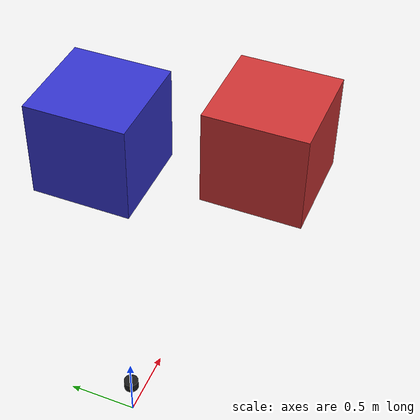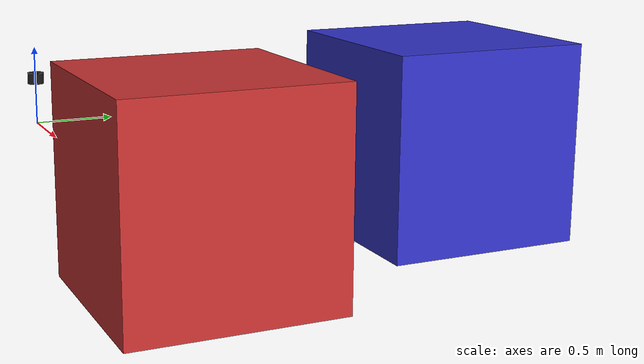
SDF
<?xml version="1.0" ?>
<sdf version="1.9">
  <world name="radarays_dynamic_cpu_multi">
    <plugin
      filename="gz-sim-physics-system"
      name="gz::sim::systems::Physics" />
    <plugin
      filename="gz-sim-user-commands-system"
      name="gz::sim::systems::UserCommands" />
    <plugin
      filename="gz-sim-scene-broadcaster-system"
      name="gz::sim::systems::SceneBroadcaster" />

    <plugin name="rmagine_embree_map_system" filename="librmagine_embree_map_system.so">
      <ignore_model>sensor_model</ignore_model>
      <update>
        <rate_limit>30</rate_limit>
        <delta_trans>0.001</delta_trans>
        <delta_rot>0.001</delta_rot>
        <delta_scale>0.001</delta_scale>
      </update>
    </plugin>

    <plugin name="rmagine_embree_sensor_system" filename="librmagine_embree_sensor_system.so"/>

    <light name="sun" type="directional">
      <cast_shadows>true</cast_shadows>
      <pose>0 0 10 0 0 0</pose>
      <diffuse>0.8 0.8 0.8 1</diffuse>
      <specular>0.2 0.2 0.2 1</specular>
      <direction>-0.4 0.2 -0.9</direction>
    </light>

    <model name="target_box_translate">
      <static>false</static>
      <pose>3 0 0.3 0 0 0</pose>
      <plugin name="test_box_mover_system" filename="libtest_box_mover_system.so">
        <axis>1 0 0</axis>
        <amplitude>1.0</amplitude>
        <period>6.0</period>
      </plugin>
      <link name="link">
        <gravity>false</gravity>
        <velocity_decay>
          <linear>1.0</linear>
          <angular>1.0</angular>
        </velocity_decay>
        <visual name="visual">
          <geometry>
            <box>
              <size>1 1 1</size>
            </box>
          </geometry>
          <material>
            <ambient>0.8 0.2 0.2 1</ambient>
            <diffuse>0.8 0.2 0.2 1</diffuse>
          </material>
          <radarays_material>
            <velocity>0.0</velocity>
            <ambient>0.3</ambient>
            <diffuse>0.7</diffuse>
            <specular>50.0</specular>
          </radarays_material>
        </visual>
      </link>
    </model>

    <model name="target_box_rotate">
      <static>false</static>
      <pose>2.5 1.5 0.3 0 0 0</pose>
      <plugin name="test_box_mover_system" filename="libtest_box_mover_system.so">
        <axis>1 0 0</axis>
        <amplitude>0.0</amplitude>
        <angular_axis>0 0 1</angular_axis>
        <angular_amplitude>0.6</angular_amplitude>
        <period>6.0</period>
      </plugin>
      <link name="link">
        <gravity>false</gravity>
        <velocity_decay>
          <linear>1.0</linear>
          <angular>1.0</angular>
        </velocity_decay>
        <visual name="visual">
          <geometry>
            <box>
              <size>1 1 1</size>
            </box>
          </geometry>
          <material>
            <ambient>0.2 0.2 0.8 1</ambient>
            <diffuse>0.2 0.2 0.8 1</diffuse>
          </material>
          <radarays_material>
            <velocity>0.0</velocity>
            <ambient>0.1</ambient>
            <diffuse>0.1</diffuse>
            <specular>3000.0</specular>
          </radarays_material>
        </visual>
      </link>
    </model>

    <model name="sensor_model">
      <static>true</static>
      <pose>0 0 0.3 0 0 0</pose>
      <plugin name="radarays_embree_sensor_system" filename="libradarays_embree_sensor_system.so">
        <map_key>default</map_key>
        <frame>radar</frame>
        <topic_image>radar/image</topic_image>
        <update_rate>4</update_rate>
        <min_angle>-1.0472</min_angle>
        <max_angle>1.0472</max_angle>
        <samples>400</samples>
        <range_max>20.0</range_max>
        <n_cells>1024</n_cells>
      </plugin>
      <link name="radar">
        <sensor name="radar_lidar_sensor" type="custom" gz:type="rmagine_embree">
          <map_key>default</map_key>
          <frame>radar</frame>
          <topic_scan>radar/scan</topic_scan>
          <topic_points>radar/points</topic_points>
          <update_rate>4</update_rate>
          <lidar>
            <scan>
              <horizontal>
                <min_angle>-1.0472</min_angle>
                <increment>0.0052486216</increment>
                <samples>400</samples>
              </horizontal>
            </scan>
            <range>
              <min>0.2</min>
              <max>20.0</max>
            </range>
          </lidar>
        </sensor>
        <visual name="radar_visual">
          <geometry>
            <cylinder>
              <radius>0.0516</radius>
              <length>0.0717</length>
            </cylinder>
          </geometry>
          <material>
            <ambient>0.1 0.1 0.1 1</ambient>
            <diffuse>0.1 0.1 0.1 1</diffuse>
          </material>
        </visual>
      </link>
    </model>
  </world>
</sdf>
